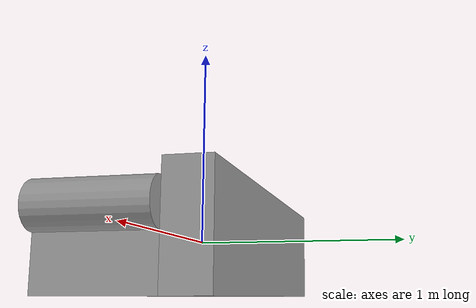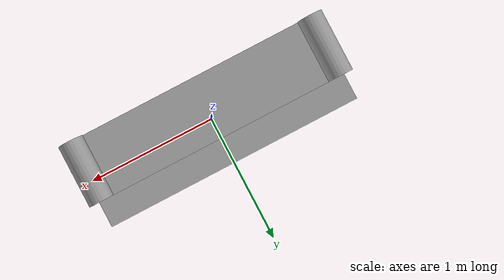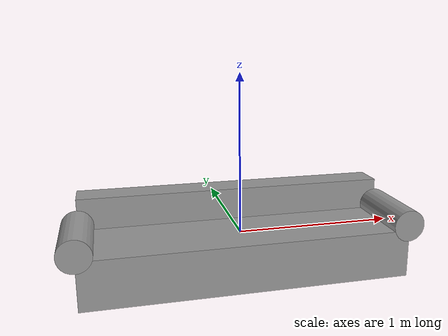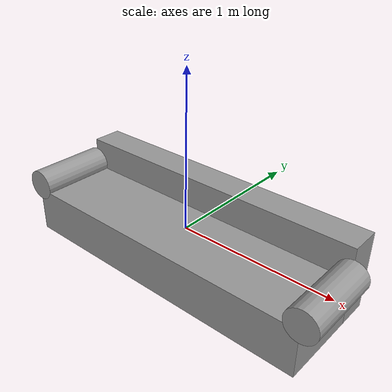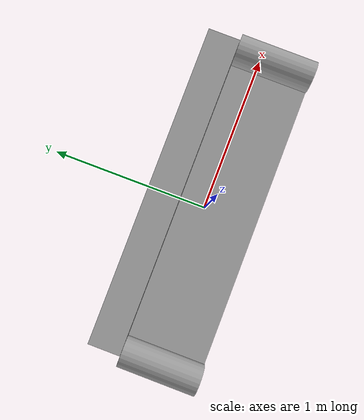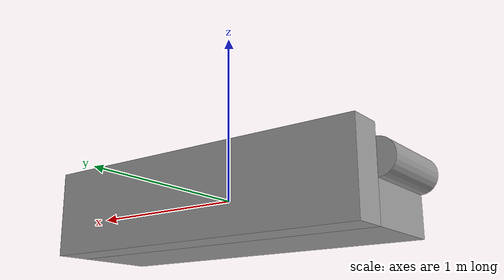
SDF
<?xml version='1.0'?>
<sdf version='1.6'>
  <model name='couch'>
    <link name='link_2'>
      <pose frame=''>0 -0.0875 -0.115 0 -0 0</pose>
      <inertial>
        <mass>1</mass>
        <inertia>
          <ixx>0.166667</ixx>
          <ixy>0</ixy>
          <ixz>0</ixz>
          <iyy>0.166667</iyy>
          <iyz>0</iyz>
          <izz>0.166667</izz>
        </inertia>
        <pose frame=''>0 0 0 0 -0 0</pose>
      </inertial>
      <gravity>1</gravity>
      <self_collide>0</self_collide>
      <kinematic>0</kinematic>
      <visual name='visual'>
        <pose frame=''>0 0 0 0 -0 0</pose>
        <geometry>
          <box>
            <size>2 0.5 0.3</size>
          </box>
        </geometry>
        <material>
          <lighting>1</lighting>
          <script>
            <uri>file://media/materials/scripts/gazebo.material</uri>
            <name>Gazebo/Grey</name>
          </script>
          <shader type='pixel'>
            <normal_map>__default__</normal_map>
          </shader>
          <ambient>0.3 0.3 0.3 1</ambient>
          <diffuse>0.7 0.7 0.7 1</diffuse>
          <specular>0.01 0.01 0.01 1</specular>
          <emissive>0 0 0 1</emissive>
        </material>
        <transparency>0</transparency>
        <cast_shadows>1</cast_shadows>
      </visual>
      <collision name='collision'>
        <laser_retro>0</laser_retro>
        <max_contacts>10</max_contacts>
        <pose frame=''>0 0 0 0 -0 0</pose>
        <geometry>
          <box>
            <size>2 0.5 0.3</size>
          </box>
        </geometry>
        <surface>
          <friction>
            <ode>
              <mu>1</mu>
              <mu2>1</mu2>
              <fdir1>0 0 0</fdir1>
              <slip1>0</slip1>
              <slip2>0</slip2>
            </ode>
            <torsional>
              <coefficient>1</coefficient>
              <patch_radius>0</patch_radius>
              <surface_radius>0</surface_radius>
              <use_patch_radius>1</use_patch_radius>
              <ode>
                <slip>0</slip>
              </ode>
            </torsional>
          </friction>
          <bounce>
            <restitution_coefficient>0</restitution_coefficient>
            <threshold>1e+06</threshold>
          </bounce>
          <contact>
            <collide_without_contact>0</collide_without_contact>
            <collide_without_contact_bitmask>1</collide_without_contact_bitmask>
            <collide_bitmask>1</collide_bitmask>
            <ode>
              <soft_cfm>0</soft_cfm>
              <soft_erp>0.2</soft_erp>
              <kp>1e+13</kp>
              <kd>1</kd>
              <max_vel>0.01</max_vel>
              <min_depth>0</min_depth>
            </ode>
            <bullet>
              <split_impulse>1</split_impulse>
              <split_impulse_penetration_threshold>-0.01</split_impulse_penetration_threshold>
              <soft_cfm>0</soft_cfm>
              <soft_erp>0.2</soft_erp>
              <kp>1e+13</kp>
              <kd>1</kd>
            </bullet>
          </contact>
        </surface>
      </collision>
    </link>
    <link name='link_3'>
      <pose frame=''>0 0.2625 -0.015 0 -0 0</pose>
      <inertial>
        <mass>1</mass>
        <inertia>
          <ixx>0.166667</ixx>
          <ixy>0</ixy>
          <ixz>0</ixz>
          <iyy>0.166667</iyy>
          <iyz>0</iyz>
          <izz>0.166667</izz>
        </inertia>
        <pose frame=''>0 0 0 0 -0 0</pose>
      </inertial>
      <gravity>1</gravity>
      <self_collide>0</self_collide>
      <kinematic>0</kinematic>
      <visual name='visual'>
        <pose frame=''>0 0 0 0 -0 0</pose>
        <geometry>
          <box>
            <size>2 0.2 0.5</size>
          </box>
        </geometry>
        <material>
          <lighting>1</lighting>
          <script>
            <uri>file://media/materials/scripts/gazebo.material</uri>
            <name>Gazebo/Grey</name>
          </script>
          <shader type='pixel'>
            <normal_map>__default__</normal_map>
          </shader>
          <ambient>0.3 0.3 0.3 1</ambient>
          <diffuse>0.7 0.7 0.7 1</diffuse>
          <specular>0.01 0.01 0.01 1</specular>
          <emissive>0 0 0 1</emissive>
        </material>
        <transparency>0</transparency>
        <cast_shadows>1</cast_shadows>
      </visual>
      <collision name='collision'>
        <laser_retro>0</laser_retro>
        <max_contacts>10</max_contacts>
        <pose frame=''>0 0 0 0 -0 0</pose>
        <geometry>
          <box>
            <size>2 0.2 0.5</size>
          </box>
        </geometry>
        <surface>
          <friction>
            <ode>
              <mu>1</mu>
              <mu2>1</mu2>
              <fdir1>0 0 0</fdir1>
              <slip1>0</slip1>
              <slip2>0</slip2>
            </ode>
            <torsional>
              <coefficient>1</coefficient>
              <patch_radius>0</patch_radius>
              <surface_radius>0</surface_radius>
              <use_patch_radius>1</use_patch_radius>
              <ode>
                <slip>0</slip>
              </ode>
            </torsional>
          </friction>
          <bounce>
            <restitution_coefficient>0</restitution_coefficient>
            <threshold>1e+06</threshold>
          </bounce>
          <contact>
            <collide_without_contact>0</collide_without_contact>
            <collide_without_contact_bitmask>1</collide_without_contact_bitmask>
            <collide_bitmask>1</collide_bitmask>
            <ode>
              <soft_cfm>0</soft_cfm>
              <soft_erp>0.2</soft_erp>
              <kp>1e+13</kp>
              <kd>1</kd>
              <max_vel>0.01</max_vel>
              <min_depth>0</min_depth>
            </ode>
            <bullet>
              <split_impulse>1</split_impulse>
              <split_impulse_penetration_threshold>-0.01</split_impulse_penetration_threshold>
              <soft_cfm>0</soft_cfm>
              <soft_erp>0.2</soft_erp>
              <kp>1e+13</kp>
              <kd>1</kd>
            </bullet>
          </contact>
        </surface>
      </collision>
    </link>
    <link name='link_4'>
      <pose frame=''>1 -0.0875 0.065 1.5707 -0 0</pose>
      <inertial>
        <mass>1</mass>
        <inertia>
          <ixx>0.145833</ixx>
          <ixy>0</ixy>
          <ixz>0</ixz>
          <iyy>0.145833</iyy>
          <iyz>0</iyz>
          <izz>0.125</izz>
        </inertia>
        <pose frame=''>0 0 0 0 -0 0</pose>
      </inertial>
      <gravity>1</gravity>
      <self_collide>0</self_collide>
      <kinematic>0</kinematic>
      <visual name='visual'>
        <pose frame=''>0 0 0 0 -0 0</pose>
        <geometry>
          <cylinder>
            <radius>0.1</radius>
            <length>0.5</length>
          </cylinder>
        </geometry>
        <material>
          <lighting>1</lighting>
          <script>
            <uri>file://media/materials/scripts/gazebo.material</uri>
            <name>Gazebo/Grey</name>
          </script>
          <shader type='pixel'>
            <normal_map>__default__</normal_map>
          </shader>
          <ambient>0.3 0.3 0.3 1</ambient>
          <diffuse>0.7 0.7 0.7 1</diffuse>
          <specular>0.01 0.01 0.01 1</specular>
          <emissive>0 0 0 1</emissive>
        </material>
        <transparency>0</transparency>
        <cast_shadows>1</cast_shadows>
      </visual>
      <collision name='collision'>
        <laser_retro>0</laser_retro>
        <max_contacts>10</max_contacts>
        <pose frame=''>0 0 0 0 -0 0</pose>
        <geometry>
          <cylinder>
            <radius>0.1</radius>
            <length>0.5</length>
          </cylinder>
        </geometry>
        <surface>
          <friction>
            <ode>
              <mu>1</mu>
              <mu2>1</mu2>
              <fdir1>0 0 0</fdir1>
              <slip1>0</slip1>
              <slip2>0</slip2>
            </ode>
            <torsional>
              <coefficient>1</coefficient>
              <patch_radius>0</patch_radius>
              <surface_radius>0</surface_radius>
              <use_patch_radius>1</use_patch_radius>
              <ode>
                <slip>0</slip>
              </ode>
            </torsional>
          </friction>
          <bounce>
            <restitution_coefficient>0</restitution_coefficient>
            <threshold>1e+06</threshold>
          </bounce>
          <contact>
            <collide_without_contact>0</collide_without_contact>
            <collide_without_contact_bitmask>1</collide_without_contact_bitmask>
            <collide_bitmask>1</collide_bitmask>
            <ode>
              <soft_cfm>0</soft_cfm>
              <soft_erp>0.2</soft_erp>
              <kp>1e+13</kp>
              <kd>1</kd>
              <max_vel>0.01</max_vel>
              <min_depth>0</min_depth>
            </ode>
            <bullet>
              <split_impulse>1</split_impulse>
              <split_impulse_penetration_threshold>-0.01</split_impulse_penetration_threshold>
              <soft_cfm>0</soft_cfm>
              <soft_erp>0.2</soft_erp>
              <kp>1e+13</kp>
              <kd>1</kd>
            </bullet>
          </contact>
        </surface>
      </collision>
    </link>
    <link name='link_4_clone'>
      <pose frame=''>-1 -0.0875 0.065 1.5707 -0 0</pose>
      <inertial>
        <mass>1</mass>
        <inertia>
          <ixx>0.145833</ixx>
          <ixy>0</ixy>
          <ixz>0</ixz>
          <iyy>0.145833</iyy>
          <iyz>0</iyz>
          <izz>0.125</izz>
        </inertia>
        <pose frame=''>0 0 0 0 -0 0</pose>
      </inertial>
      <self_collide>0</self_collide>
      <kinematic>0</kinematic>
      <gravity>1</gravity>
      <visual name='visual'>
        <pose frame=''>0 0 0 0 -0 0</pose>
        <geometry>
          <cylinder>
            <radius>0.1</radius>
            <length>0.5</length>
          </cylinder>
        </geometry>
        <material>
          <lighting>1</lighting>
          <script>
            <uri>file://media/materials/scripts/gazebo.material</uri>
            <name>Gazebo/Grey</name>
          </script>
          <shader type='pixel'>
            <normal_map>__default__</normal_map>
          </shader>
          <ambient>0.3 0.3 0.3 1</ambient>
          <diffuse>0.7 0.7 0.7 1</diffuse>
          <specular>0.01 0.01 0.01 1</specular>
          <emissive>0 0 0 1</emissive>
        </material>
        <transparency>0</transparency>
        <cast_shadows>1</cast_shadows>
      </visual>
      <collision name='collision'>
        <laser_retro>0</laser_retro>
        <max_contacts>10</max_contacts>
        <pose frame=''>0 0 0 0 -0 0</pose>
        <geometry>
          <cylinder>
            <radius>0.1</radius>
            <length>0.5</length>
          </cylinder>
        </geometry>
        <surface>
          <friction>
            <ode>
              <mu>1</mu>
              <mu2>1</mu2>
              <fdir1>0 0 0</fdir1>
              <slip1>0</slip1>
              <slip2>0</slip2>
            </ode>
            <torsional>
              <coefficient>1</coefficient>
              <patch_radius>0</patch_radius>
              <surface_radius>0</surface_radius>
              <use_patch_radius>1</use_patch_radius>
              <ode>
                <slip>0</slip>
              </ode>
            </torsional>
          </friction>
          <bounce>
            <restitution_coefficient>0</restitution_coefficient>
            <threshold>1e+06</threshold>
          </bounce>
          <contact>
            <collide_without_contact>0</collide_without_contact>
            <collide_without_contact_bitmask>1</collide_without_contact_bitmask>
            <collide_bitmask>1</collide_bitmask>
            <ode>
              <soft_cfm>0</soft_cfm>
              <soft_erp>0.2</soft_erp>
              <kp>1e+13</kp>
              <kd>1</kd>
              <max_vel>0.01</max_vel>
              <min_depth>0</min_depth>
            </ode>
            <bullet>
              <split_impulse>1</split_impulse>
              <split_impulse_penetration_threshold>-0.01</split_impulse_penetration_threshold>
              <soft_cfm>0</soft_cfm>
              <soft_erp>0.2</soft_erp>
              <kp>1e+13</kp>
              <kd>1</kd>
            </bullet>
          </contact>
        </surface>
      </collision>
    </link>
    <joint name='link_2_JOINT_4' type='fixed'>
      <parent>link_2</parent>
      <child>link_4_clone</child>
      <pose frame=''>0 0 0 0 -0 0</pose>
      <physics>
        <ode>
          <limit>
            <cfm>0</cfm>
            <erp>0.2</erp>
          </limit>
          <suspension>
            <cfm>0</cfm>
            <erp>0.2</erp>
          </suspension>
        </ode>
      </physics>
    </joint>
    <joint name='link_2_JOINT_6' type='fixed'>
      <parent>link_2</parent>
      <child>link_3</child>
      <pose frame=''>0 0 0 0 -0 0</pose>
      <physics>
        <ode>
          <limit>
            <cfm>0</cfm>
            <erp>0.2</erp>
          </limit>
          <suspension>
            <cfm>0</cfm>
            <erp>0.2</erp>
          </suspension>
        </ode>
      </physics>
    </joint>
    <joint name='link_2_JOINT_7' type='fixed'>
      <parent>link_2</parent>
      <child>link_4</child>
      <pose frame=''>0 0 0 0 -0 0</pose>
      <physics>
        <ode>
          <limit>
            <cfm>0</cfm>
            <erp>0.2</erp>
          </limit>
          <suspension>
            <cfm>0</cfm>
            <erp>0.2</erp>
          </suspension>
        </ode>
      </physics>
    </joint>
    <static>0</static>
    <allow_auto_disable>1</allow_auto_disable>
  </model>
</sdf>
